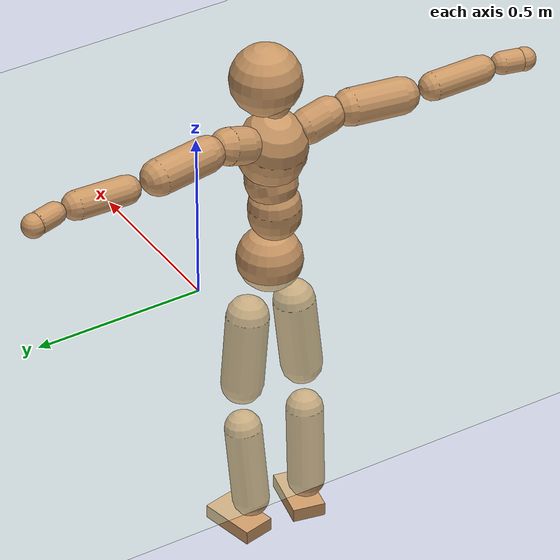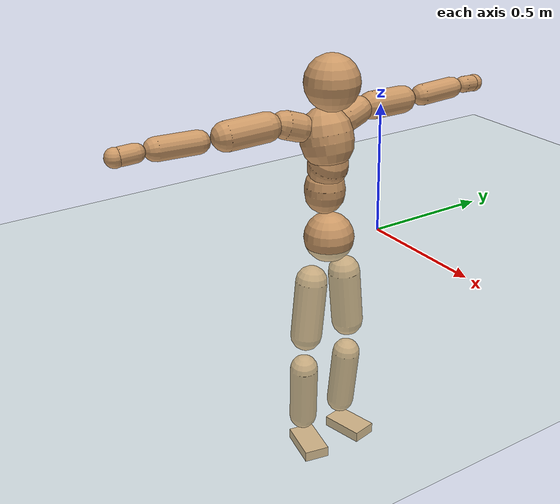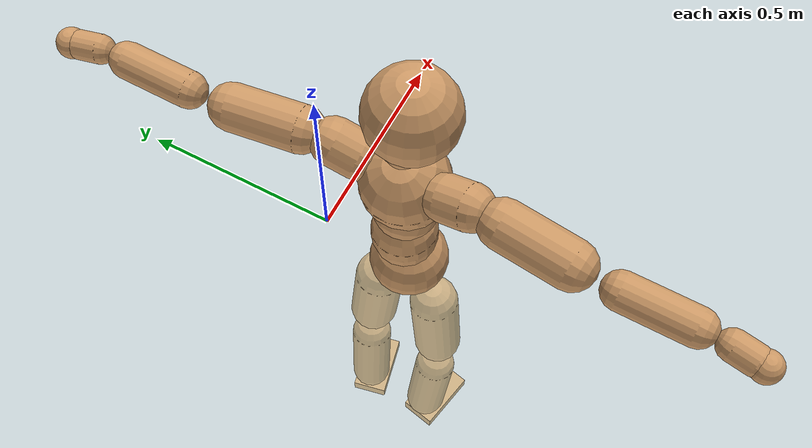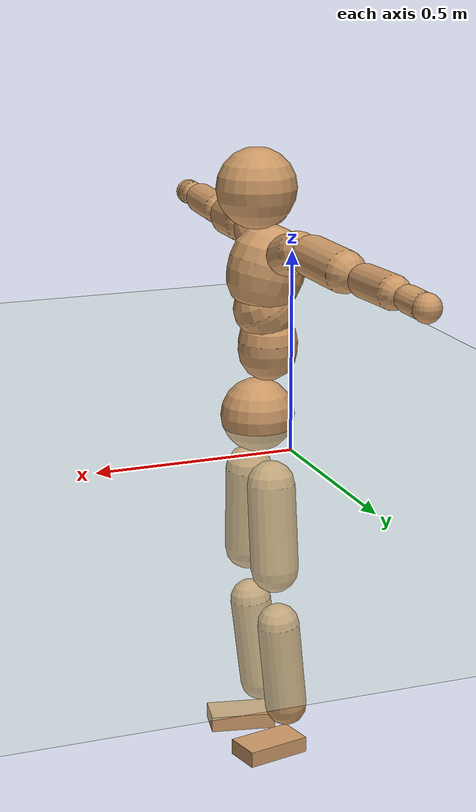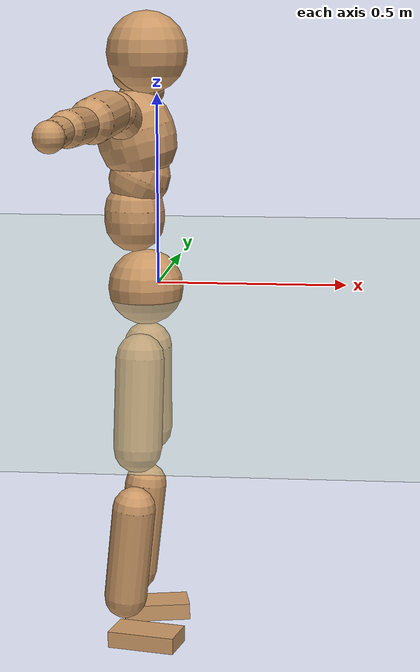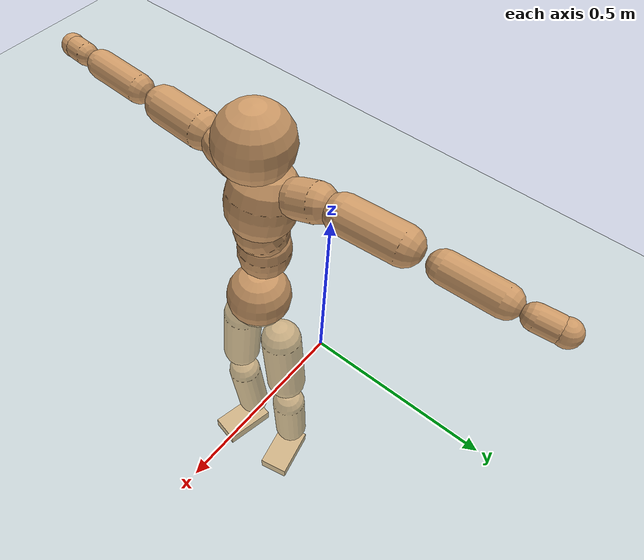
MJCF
<mujoco model="humanoid">
  <compiler coordinate="local"/>
  <default>
    <joint damping="0.0" armature="0.01" stiffness="0.0" limited="true"/>
    <geom conaffinity="1" condim="3" contype="7" margin="0.001" rgba="0.8 0.6 .4 1"/>
  </default>
  <asset>
    <texture type="skybox" builtin="gradient" rgb1=".4 .5 .6" rgb2="0 0 0" width="100" height="100"/>
    <texture builtin="flat" height="1278" mark="cross" markrgb="1 1 1" name="texgeom" random="0.01" rgb1="0.8 0.6 0.4" rgb2="0.8 0.6 0.4" type="cube" width="127"/>
    <texture builtin="checker" height="100" name="texplane" rgb1="0 0 0" rgb2="0.8 0.8 0.8" type="2d" width="100"/>
    <material name="MatPlane" reflectance="0.5" shininess="1" specular="1" texrepeat="60 60" texture="texplane"/>
    <material name="geom" texture="texgeom" texuniform="true"/>
  </asset>
  <worldbody>
    <light cutoff="100" diffuse="1 1 1" dir="-0 0 -1.3" directional="true" exponent="1" pos="0 0 1.3" specular=".1 .1 .1"/>
    <geom conaffinity="1" condim="3" name="floor" pos="0 0 0" rgba="0.8 0.9 0.8 1" size="100 100 .2" type="plane" material="MatPlane"/>
    <body name="Pelvis" pos="-0.0016 -0.2288 0.0294">
      <freejoint name="Pelvis"/>
      <geom type="sphere" contype="1" conaffinity="1" density="500" size="0.0955" pos="0.0000 0.0000 0.0000" name="Pelvis"/>
      <body name="L_Hip" pos="-0.0067 0.0703 -0.0926">
        <joint name="L_Hip_x" type="hinge" pos="0 0 0" axis="1 0 0" stiffness="800" damping="80" armature="0.02" range="-180.0000 180.0000"/>
        <joint name="L_Hip_y" type="hinge" pos="0 0 0" axis="0 1 0" stiffness="800" damping="80" armature="0.02" range="-180.0000 180.0000"/>
        <joint name="L_Hip_z" type="hinge" pos="0 0 0" axis="0 0 1" stiffness="800" damping="80" armature="0.02" range="-180.0000 180.0000"/>
        <geom type="capsule" contype="1" conaffinity="1" density="500" fromto="-0.0009 0.0068 -0.0749 -0.0036 0.0271 -0.2997" size="0.062" name="L_Hip"/>
        <body name="L_Knee" pos="-0.0045 0.0339 -0.3746">
          <joint name="L_Knee_x" type="hinge" pos="0 0 0" axis="1 0 0" stiffness="800" damping="80" armature="0.02" range="-180.0000 180.0000"/>
          <joint name="L_Knee_y" type="hinge" pos="0 0 0" axis="0 1 0" stiffness="800" damping="80" armature="0.02" range="-180.0000 180.0000"/>
          <joint name="L_Knee_z" type="hinge" pos="0 0 0" axis="0 0 1" stiffness="800" damping="80" armature="0.02" range="-180.0000 180.0000"/>
          <geom type="capsule" contype="1" conaffinity="1" density="500" fromto="-0.0088 -0.0028 -0.0798 -0.0354 -0.0112 -0.3192" size="0.0547" name="L_Knee"/>
          <body name="L_Ankle" pos="-0.0442 -0.014 -0.399">
            <joint name="L_Ankle_x" type="hinge" pos="0 0 0" axis="1 0 0" stiffness="800" damping="80" armature="0.02" range="-180.0000 180.0000"/>
            <joint name="L_Ankle_y" type="hinge" pos="0 0 0" axis="0 1 0" stiffness="800" damping="80" armature="0.02" range="-180.0000 180.0000"/>
            <joint name="L_Ankle_z" type="hinge" pos="0 0 0" axis="0 0 1" stiffness="800" damping="80" armature="0.02" range="-180.0000 180.0000"/>
            <geom type="box" contype="1" conaffinity="1" density="500" pos="0.0603 0.0129 -0.0280" size="0.086 0.0484 0.0211" quat="0.9944 0.0000 0.0000 0.1054" name="L_Ankle"/>
            <body name="L_Toe" pos="0.1206 0.0259 -0.0561">
              <joint name="L_Toe_x" type="hinge" pos="0 0 0" axis="1 0 0" stiffness="500" damping="50" armature="0.02" range="-180.0000 180.0000"/>
              <joint name="L_Toe_y" type="hinge" pos="0 0 0" axis="0 1 0" stiffness="500" damping="50" armature="0.02" range="-180.0000 180.0000"/>
              <joint name="L_Toe_z" type="hinge" pos="0 0 0" axis="0 0 1" stiffness="500" damping="50" armature="0.02" range="-180.0000 180.0000"/>
              <geom type="box" contype="1" conaffinity="1" density="500" pos="0.0000 0.0000 0.0271" size="0.001 0.0024 0.001" quat="0.9938 0.0000 0.0000 0.1115" name="L_Toe"/>
            </body>
          </body>
        </body>
      </body>
      <body name="R_Hip" pos="-0.0041 -0.0683 -0.0916">
        <joint name="R_Hip_x" type="hinge" pos="0 0 0" axis="1 0 0" stiffness="800" damping="80" armature="0.02" range="-180.0000 180.0000"/>
        <joint name="R_Hip_y" type="hinge" pos="0 0 0" axis="0 1 0" stiffness="800" damping="80" armature="0.02" range="-180.0000 180.0000"/>
        <joint name="R_Hip_z" type="hinge" pos="0 0 0" axis="0 0 1" stiffness="800" damping="80" armature="0.02" range="-180.0000 180.0000"/>
        <geom type="capsule" contype="1" conaffinity="1" density="500" fromto="-0.0018 -0.0076 -0.0765 -0.0071 -0.0304 -0.3061" size="0.0611" name="R_Hip"/>
        <body name="R_Knee" pos="-0.0088 -0.038 -0.3826">
          <joint name="R_Knee_x" type="hinge" pos="0 0 0" axis="1 0 0" stiffness="800" damping="80" armature="0.02" range="-180.0000 180.0000"/>
          <joint name="R_Knee_y" type="hinge" pos="0 0 0" axis="0 1 0" stiffness="800" damping="80" armature="0.02" range="-180.0000 180.0000"/>
          <joint name="R_Knee_z" type="hinge" pos="0 0 0" axis="0 0 1" stiffness="800" damping="80" armature="0.02" range="-180.0000 180.0000"/>
          <geom type="capsule" contype="1" conaffinity="1" density="500" fromto="-0.0086 0.0032 -0.0799 -0.0344 0.0129 -0.3196" size="0.0548" name="R_Knee"/>
          <body name="R_Ankle" pos="-0.0429 0.0161 -0.3995">
            <joint name="R_Ankle_x" type="hinge" pos="0 0 0" axis="1 0 0" stiffness="800" damping="80" armature="0.02" range="-180.0000 180.0000"/>
            <joint name="R_Ankle_y" type="hinge" pos="0 0 0" axis="0 1 0" stiffness="800" damping="80" armature="0.02" range="-180.0000 180.0000"/>
            <joint name="R_Ankle_z" type="hinge" pos="0 0 0" axis="0 0 1" stiffness="800" damping="80" armature="0.02" range="-180.0000 180.0000"/>
            <geom type="box" contype="1" conaffinity="1" density="500" pos="0.0624 -0.0127 -0.0241" size="0.0874 0.0488 0.021" quat="0.9949 0.0000 0.0000 -0.1007" name="R_Ankle"/>
            <body name="R_Toe" pos="0.1247 -0.0255 -0.0481">
              <joint name="R_Toe_x" type="hinge" pos="0 0 0" axis="1 0 0" stiffness="500" damping="50" armature="0.02" range="-180.0000 180.0000"/>
              <joint name="R_Toe_y" type="hinge" pos="0 0 0" axis="0 1 0" stiffness="500" damping="50" armature="0.02" range="-180.0000 180.0000"/>
              <joint name="R_Toe_z" type="hinge" pos="0 0 0" axis="0 0 1" stiffness="500" damping="50" armature="0.02" range="-180.0000 180.0000"/>
              <geom type="box" contype="1" conaffinity="1" density="500" pos="0.0000 0.0000 0.0250" size="0.001 0.0024 0.0011" quat="0.9958 0.0000 0.0000 -0.0915" name="R_Toe"/>
            </body>
          </body>
        </body>
      </body>
      <body name="Torso" pos="-0.0275 -0.0026 0.1105">
        <joint name="Torso_x" type="hinge" pos="0 0 0" axis="1 0 0" stiffness="1000" damping="100" armature="0.02" range="-180.0000 180.0000"/>
        <joint name="Torso_y" type="hinge" pos="0 0 0" axis="0 1 0" stiffness="1000" damping="100" armature="0.02" range="-180.0000 180.0000"/>
        <joint name="Torso_z" type="hinge" pos="0 0 0" axis="0 0 1" stiffness="1000" damping="100" armature="0.02" range="-180.0000 180.0000"/>
        <geom type="capsule" contype="1" conaffinity="1" density="500" fromto="0.0004 0.0033 0.0827 0.0002 0.0022 0.0552" size="0.0759" name="Torso"/>
        <body name="Spine" pos="0.0006 0.0056 0.1379">
          <joint name="Spine_x" type="hinge" pos="0 0 0" axis="1 0 0" stiffness="1000" damping="100" armature="0.02" range="-180.0000 180.0000"/>
          <joint name="Spine_y" type="hinge" pos="0 0 0" axis="0 1 0" stiffness="1000" damping="100" armature="0.02" range="-180.0000 180.0000"/>
          <joint name="Spine_z" type="hinge" pos="0 0 0" axis="0 0 1" stiffness="1000" damping="100" armature="0.02" range="-180.0000 180.0000"/>
          <geom type="capsule" contype="1" conaffinity="1" density="500" fromto="0.0156 0.0008 0.0324 0.0104 0.0006 0.0216" size="0.0754" name="Spine"/>
          <body name="Chest" pos="0.026 0.0014 0.0539">
            <joint name="Chest_x" type="hinge" pos="0 0 0" axis="1 0 0" stiffness="1000" damping="100" armature="0.02" range="-180.0000 180.0000"/>
            <joint name="Chest_y" type="hinge" pos="0 0 0" axis="0 1 0" stiffness="1000" damping="100" armature="0.02" range="-180.0000 180.0000"/>
            <joint name="Chest_z" type="hinge" pos="0 0 0" axis="0 0 1" stiffness="1000" damping="100" armature="0.02" range="-180.0000 180.0000"/>
            <geom type="capsule" contype="1" conaffinity="1" density="500" fromto="-0.0240 -0.0011 0.0925 -0.0160 -0.0007 0.0617" size="0.0986" name="Chest"/>
            <body name="Neck" pos="-0.0445 -0.0026 0.218">
              <joint name="Neck_x" type="hinge" pos="0 0 0" axis="1 0 0" stiffness="500" damping="50" armature="0.02" range="-180.0000 180.0000"/>
              <joint name="Neck_y" type="hinge" pos="0 0 0" axis="0 1 0" stiffness="500" damping="50" armature="0.02" range="-180.0000 180.0000"/>
              <joint name="Neck_z" type="hinge" pos="0 0 0" axis="0 0 1" stiffness="500" damping="50" armature="0.02" range="-180.0000 180.0000"/>
              <geom type="capsule" contype="1" conaffinity="1" density="500" fromto="0.0104 0.0011 0.0132 0.0417 0.0043 0.0528" size="0.0439" name="Neck"/>
              <body name="Head" pos="0.0522 0.0053 0.0659">
                <joint name="Head_x" type="hinge" pos="0 0 0" axis="1 0 0" stiffness="500" damping="50" armature="0.02" range="-180.0000 180.0000"/>
                <joint name="Head_y" type="hinge" pos="0 0 0" axis="0 1 0" stiffness="500" damping="50" armature="0.02" range="-180.0000 180.0000"/>
                <joint name="Head_z" type="hinge" pos="0 0 0" axis="0 0 1" stiffness="500" damping="50" armature="0.02" range="-180.0000 180.0000"/>
                <geom type="sphere" contype="1" conaffinity="1" density="500" size="0.1019" pos="0.0000 0.0000 0.0000" name="Head"/>
              </body>
            </body>
            <body name="L_Thorax" pos="-0.0354 0.0789 0.1237">
              <joint name="L_Thorax_x" type="hinge" pos="0 0 0" axis="1 0 0" stiffness="500" damping="50" armature="0.02" range="-180.0000 180.0000"/>
              <joint name="L_Thorax_y" type="hinge" pos="0 0 0" axis="0 1 0" stiffness="500" damping="50" armature="0.02" range="-180.0000 180.0000"/>
              <joint name="L_Thorax_z" type="hinge" pos="0 0 0" axis="0 0 1" stiffness="500" damping="50" armature="0.02" range="-180.0000 180.0000"/>
              <geom type="capsule" contype="1" conaffinity="1" density="500" fromto="-0.0017 0.0182 0.0061 -0.0068 0.0730 0.0242" size="0.0526" name="L_Thorax"/>
              <body name="L_Shoulder" pos="-0.0085 0.0912 0.0303">
                <joint name="L_Shoulder_x" type="hinge" pos="0 0 0" axis="1 0 0" stiffness="500" damping="50" armature="0.02" range="-720.0000 720.0000"/>
                <joint name="L_Shoulder_y" type="hinge" pos="0 0 0" axis="0 1 0" stiffness="500" damping="50" armature="0.02" range="-720.0000 720.0000"/>
                <joint name="L_Shoulder_z" type="hinge" pos="0 0 0" axis="0 0 1" stiffness="500" damping="50" armature="0.02" range="-720.0000 720.0000"/>
                <geom type="capsule" contype="1" conaffinity="1" density="500" fromto="-0.0055 0.0522 -0.0025 -0.0222 0.2087 -0.0102" size="0.0521" name="L_Shoulder"/>
                <body name="L_Elbow" pos="-0.0277 0.2609 -0.0127">
                  <joint name="L_Elbow_x" type="hinge" pos="0 0 0" axis="1 0 0" stiffness="500" damping="50" armature="0.02" range="-720.0000 720.0000"/>
                  <joint name="L_Elbow_y" type="hinge" pos="0 0 0" axis="0 1 0" stiffness="500" damping="50" armature="0.02" range="-720.0000 720.0000"/>
                  <joint name="L_Elbow_z" type="hinge" pos="0 0 0" axis="0 0 1" stiffness="500" damping="50" armature="0.02" range="-720.0000 720.0000"/>
                  <geom type="capsule" contype="1" conaffinity="1" density="500" fromto="-0.0002 0.0502 0.0018 -0.0007 0.2008 0.0072" size="0.0409" name="L_Elbow"/>
                  <body name="L_Wrist" pos="-0.0009 0.251 0.009">
                    <joint name="L_Wrist_x" type="hinge" pos="0 0 0" axis="1 0 0" stiffness="300" damping="30" armature="0.02" range="-180.0000 180.0000"/>
                    <joint name="L_Wrist_y" type="hinge" pos="0 0 0" axis="0 1 0" stiffness="300" damping="30" armature="0.02" range="-180.0000 180.0000"/>
                    <joint name="L_Wrist_z" type="hinge" pos="0 0 0" axis="0 0 1" stiffness="300" damping="30" armature="0.02" range="-180.0000 180.0000"/>
                    <geom type="capsule" contype="1" conaffinity="1" density="500" fromto="-0.0030 0.0170 -0.0016 -0.0121 0.0680 -0.0066" size="0.0322" name="L_Wrist"/>
                    <body name="L_Hand" pos="-0.0151 0.085 -0.0082">
                      <joint name="L_Hand_x" type="hinge" pos="0 0 0" axis="1 0 0" stiffness="300" damping="30" armature="0.02" range="-180.0000 180.0000"/>
                      <joint name="L_Hand_y" type="hinge" pos="0 0 0" axis="0 1 0" stiffness="300" damping="30" armature="0.02" range="-180.0000 180.0000"/>
                      <joint name="L_Hand_z" type="hinge" pos="0 0 0" axis="0 0 1" stiffness="300" damping="30" armature="0.02" range="-180.0000 180.0000"/>
                      <geom type="sphere" contype="1" conaffinity="1" density="500" size="0.0340" pos="0.0000 0.0000 0.0000" name="L_Hand"/>
                    </body>
                  </body>
                </body>
              </body>
            </body>
            <body name="R_Thorax" pos="-0.04 -0.0818 0.1208">
              <joint name="R_Thorax_x" type="hinge" pos="0 0 0" axis="1 0 0" stiffness="500" damping="50" armature="0.02" range="-180.0000 180.0000"/>
              <joint name="R_Thorax_y" type="hinge" pos="0 0 0" axis="0 1 0" stiffness="500" damping="50" armature="0.02" range="-180.0000 180.0000"/>
              <joint name="R_Thorax_z" type="hinge" pos="0 0 0" axis="0 0 1" stiffness="500" damping="50" armature="0.02" range="-180.0000 180.0000"/>
              <geom type="capsule" contype="1" conaffinity="1" density="500" fromto="-0.0018 -0.0193 0.0065 -0.0071 -0.0773 0.0259" size="0.0516" name="R_Thorax"/>
              <body name="R_Shoulder" pos="-0.0089 -0.0966 0.0323">
                <joint name="R_Shoulder_x" type="hinge" pos="0 0 0" axis="1 0 0" stiffness="500" damping="50" armature="0.02" range="-720.0000 720.0000"/>
                <joint name="R_Shoulder_y" type="hinge" pos="0 0 0" axis="0 1 0" stiffness="500" damping="50" armature="0.02" range="-720.0000 720.0000"/>
                <joint name="R_Shoulder_z" type="hinge" pos="0 0 0" axis="0 0 1" stiffness="500" damping="50" armature="0.02" range="-720.0000 720.0000"/>
                <geom type="capsule" contype="1" conaffinity="1" density="500" fromto="-0.0043 -0.0512 -0.0027 -0.0173 -0.2046 -0.0106" size="0.0536" name="R_Shoulder"/>
                <body name="R_Elbow" pos="-0.0217 -0.2558 -0.0133">
                  <joint name="R_Elbow_x" type="hinge" pos="0 0 0" axis="1 0 0" stiffness="500" damping="50" armature="0.02" range="-720.0000 720.0000"/>
                  <joint name="R_Elbow_y" type="hinge" pos="0 0 0" axis="0 1 0" stiffness="500" damping="50" armature="0.02" range="-720.0000 720.0000"/>
                  <joint name="R_Elbow_z" type="hinge" pos="0 0 0" axis="0 0 1" stiffness="500" damping="50" armature="0.02" range="-720.0000 720.0000"/>
                  <geom type="capsule" contype="1" conaffinity="1" density="500" fromto="-0.0011 -0.0514 0.0015 -0.0045 -0.2058 0.0061" size="0.0413" name="R_Elbow"/>
                  <body name="R_Wrist" pos="-0.0056 -0.2572 0.0076">
                    <joint name="R_Wrist_x" type="hinge" pos="0 0 0" axis="1 0 0" stiffness="300" damping="30" armature="0.02" range="-180.0000 180.0000"/>
                    <joint name="R_Wrist_y" type="hinge" pos="0 0 0" axis="0 1 0" stiffness="300" damping="30" armature="0.02" range="-180.0000 180.0000"/>
                    <joint name="R_Wrist_z" type="hinge" pos="0 0 0" axis="0 0 1" stiffness="300" damping="30" armature="0.02" range="-180.0000 180.0000"/>
                    <geom type="capsule" contype="1" conaffinity="1" density="500" fromto="-0.0021 -0.0172 -0.0012 -0.0084 -0.0687 -0.0050" size="0.033" name="R_Wrist"/>
                    <body name="R_Hand" pos="-0.0105 -0.0858 -0.0062">
                      <joint name="R_Hand_x" type="hinge" pos="0 0 0" axis="1 0 0" stiffness="300" damping="30" armature="0.02" range="-180.0000 180.0000"/>
                      <joint name="R_Hand_y" type="hinge" pos="0 0 0" axis="0 1 0" stiffness="300" damping="30" armature="0.02" range="-180.0000 180.0000"/>
                      <joint name="R_Hand_z" type="hinge" pos="0 0 0" axis="0 0 1" stiffness="300" damping="30" armature="0.02" range="-180.0000 180.0000"/>
                      <geom type="sphere" contype="1" conaffinity="1" density="500" size="0.0344" pos="0.0000 0.0000 0.0000" name="R_Hand"/>
                    </body>
                  </body>
                </body>
              </body>
            </body>
          </body>
        </body>
      </body>
    </body>
  </worldbody>
  <actuator>
    <motor name="L_Hip_x" joint="L_Hip_x" gear="500"/>
    <motor name="L_Hip_y" joint="L_Hip_y" gear="500"/>
    <motor name="L_Hip_z" joint="L_Hip_z" gear="500"/>
    <motor name="L_Knee_x" joint="L_Knee_x" gear="500"/>
    <motor name="L_Knee_y" joint="L_Knee_y" gear="500"/>
    <motor name="L_Knee_z" joint="L_Knee_z" gear="500"/>
    <motor name="L_Ankle_x" joint="L_Ankle_x" gear="500"/>
    <motor name="L_Ankle_y" joint="L_Ankle_y" gear="500"/>
    <motor name="L_Ankle_z" joint="L_Ankle_z" gear="500"/>
    <motor name="L_Toe_x" joint="L_Toe_x" gear="500"/>
    <motor name="L_Toe_y" joint="L_Toe_y" gear="500"/>
    <motor name="L_Toe_z" joint="L_Toe_z" gear="500"/>
    <motor name="R_Hip_x" joint="R_Hip_x" gear="500"/>
    <motor name="R_Hip_y" joint="R_Hip_y" gear="500"/>
    <motor name="R_Hip_z" joint="R_Hip_z" gear="500"/>
    <motor name="R_Knee_x" joint="R_Knee_x" gear="500"/>
    <motor name="R_Knee_y" joint="R_Knee_y" gear="500"/>
    <motor name="R_Knee_z" joint="R_Knee_z" gear="500"/>
    <motor name="R_Ankle_x" joint="R_Ankle_x" gear="500"/>
    <motor name="R_Ankle_y" joint="R_Ankle_y" gear="500"/>
    <motor name="R_Ankle_z" joint="R_Ankle_z" gear="500"/>
    <motor name="R_Toe_x" joint="R_Toe_x" gear="500"/>
    <motor name="R_Toe_y" joint="R_Toe_y" gear="500"/>
    <motor name="R_Toe_z" joint="R_Toe_z" gear="500"/>
    <motor name="Torso_x" joint="Torso_x" gear="500"/>
    <motor name="Torso_y" joint="Torso_y" gear="500"/>
    <motor name="Torso_z" joint="Torso_z" gear="500"/>
    <motor name="Spine_x" joint="Spine_x" gear="500"/>
    <motor name="Spine_y" joint="Spine_y" gear="500"/>
    <motor name="Spine_z" joint="Spine_z" gear="500"/>
    <motor name="Chest_x" joint="Chest_x" gear="500"/>
    <motor name="Chest_y" joint="Chest_y" gear="500"/>
    <motor name="Chest_z" joint="Chest_z" gear="500"/>
    <motor name="Neck_x" joint="Neck_x" gear="500"/>
    <motor name="Neck_y" joint="Neck_y" gear="500"/>
    <motor name="Neck_z" joint="Neck_z" gear="500"/>
    <motor name="Head_x" joint="Head_x" gear="500"/>
    <motor name="Head_y" joint="Head_y" gear="500"/>
    <motor name="Head_z" joint="Head_z" gear="500"/>
    <motor name="L_Thorax_x" joint="L_Thorax_x" gear="500"/>
    <motor name="L_Thorax_y" joint="L_Thorax_y" gear="500"/>
    <motor name="L_Thorax_z" joint="L_Thorax_z" gear="500"/>
    <motor name="L_Shoulder_x" joint="L_Shoulder_x" gear="500"/>
    <motor name="L_Shoulder_y" joint="L_Shoulder_y" gear="500"/>
    <motor name="L_Shoulder_z" joint="L_Shoulder_z" gear="500"/>
    <motor name="L_Elbow_x" joint="L_Elbow_x" gear="500"/>
    <motor name="L_Elbow_y" joint="L_Elbow_y" gear="500"/>
    <motor name="L_Elbow_z" joint="L_Elbow_z" gear="500"/>
    <motor name="L_Wrist_x" joint="L_Wrist_x" gear="500"/>
    <motor name="L_Wrist_y" joint="L_Wrist_y" gear="500"/>
    <motor name="L_Wrist_z" joint="L_Wrist_z" gear="500"/>
    <motor name="L_Hand_x" joint="L_Hand_x" gear="500"/>
    <motor name="L_Hand_y" joint="L_Hand_y" gear="500"/>
    <motor name="L_Hand_z" joint="L_Hand_z" gear="500"/>
    <motor name="R_Thorax_x" joint="R_Thorax_x" gear="500"/>
    <motor name="R_Thorax_y" joint="R_Thorax_y" gear="500"/>
    <motor name="R_Thorax_z" joint="R_Thorax_z" gear="500"/>
    <motor name="R_Shoulder_x" joint="R_Shoulder_x" gear="500"/>
    <motor name="R_Shoulder_y" joint="R_Shoulder_y" gear="500"/>
    <motor name="R_Shoulder_z" joint="R_Shoulder_z" gear="500"/>
    <motor name="R_Elbow_x" joint="R_Elbow_x" gear="500"/>
    <motor name="R_Elbow_y" joint="R_Elbow_y" gear="500"/>
    <motor name="R_Elbow_z" joint="R_Elbow_z" gear="500"/>
    <motor name="R_Wrist_x" joint="R_Wrist_x" gear="500"/>
    <motor name="R_Wrist_y" joint="R_Wrist_y" gear="500"/>
    <motor name="R_Wrist_z" joint="R_Wrist_z" gear="500"/>
    <motor name="R_Hand_x" joint="R_Hand_x" gear="500"/>
    <motor name="R_Hand_y" joint="R_Hand_y" gear="500"/>
    <motor name="R_Hand_z" joint="R_Hand_z" gear="500"/>
  </actuator>
  <contact>
    <exclude body1="Torso" body2="Chest"/>
    <exclude body1="Head" body2="Chest"/>
    <exclude body1="R_Knee" body2="R_Toe"/>
    <exclude body1="R_Knee" body2="L_Ankle"/>
    <exclude body1="R_Knee" body2="L_Toe"/>
    <exclude body1="L_Knee" body2="L_Toe"/>
    <exclude body1="L_Knee" body2="R_Ankle"/>
    <exclude body1="L_Knee" body2="R_Toe"/>
    <exclude body1="L_Shoulder" body2="Chest"/>
    <exclude body1="R_Shoulder" body2="Chest"/>
  </contact>
  <sensor/>
  <size njmax="700" nconmax="700"/>
</mujoco>
